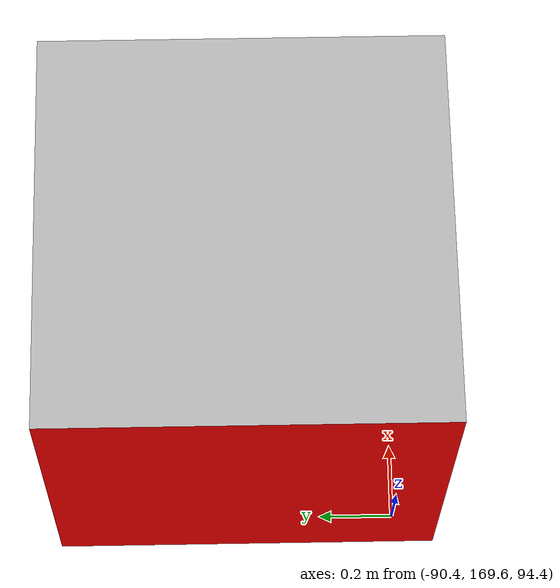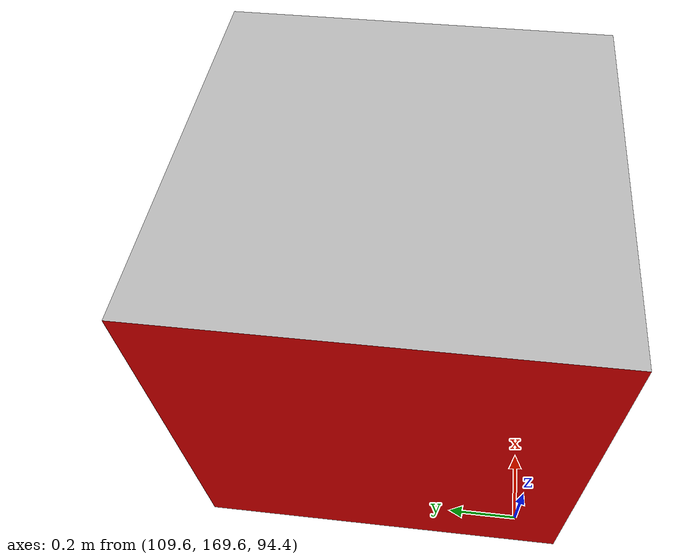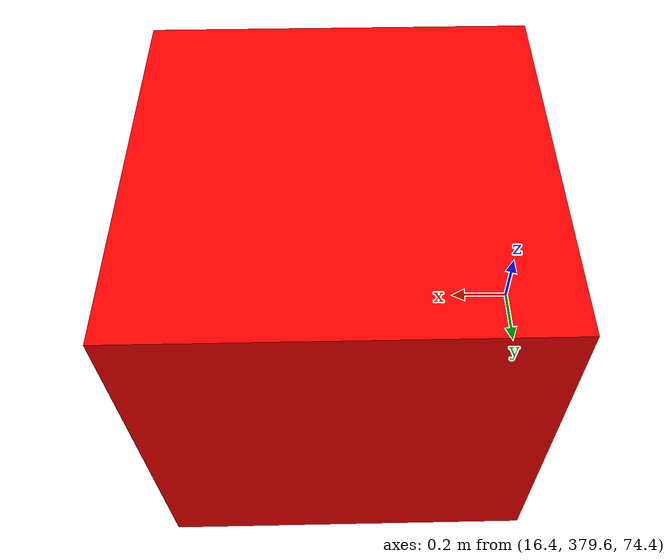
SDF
<sdf version="1.9">
 <world name="cohoma">
  <physics name="1ms" type="ignored">
   <max_step_size>0.001</max_step_size>
   <real_time_factor>1.0</real_time_factor>
   <collision_detector>bullet</collision_detector>
  </physics>
  <plugin filename="gz-sim-physics-system" name="gz::sim::systems::Physics"/>
  <plugin filename="gz-sim-sensors-system" name="gz::sim::systems::Sensors">
   <render_engine>ogre2</render_engine>
  </plugin>
  <plugin filename="gz-sim-user-commands-system" name="gz::sim::systems::UserCommands"/>
  <plugin filename="gz-sim-scene-broadcaster-system" name="gz::sim::systems::SceneBroadcaster"/>
  <plugin filename="gz-sim-imu-system" name="gz::sim::systems::Imu"/>
  <plugin filename="gz-sim-navsat-system" name="gz::sim::systems::NavSat"/>
  <scene>
   <ambient>1.0 1.0 1.0</ambient>
   <background>0.8 0.8 0.8</background>
   <grid>false</grid>
   <shadows>true</shadows>
  </scene>
  <spherical_coordinates>
   <latitude_deg>48.86314789481615</latitude_deg>
   <longitude_deg>1.8904048204422</longitude_deg>
   <elevation>0</elevation>
   <heading_deg>0</heading_deg>
   <surface_model>EARTH_WGS84</surface_model>
  </spherical_coordinates>
  <light type="directional" name="sun">
   <pose>0 0 10 0 0 0</pose>
   <diffuse>0.8 0.8 0.8 1</diffuse>
   <specular>0.0 0.0 0.0 0</specular>
   <attenuation>
    <range>1000</range>
    <constant>0.9</constant>
    <linear>0.01</linear>
    <quadratic>0.001</quadratic>
   </attenuation>
   <direction>-0.5 0.1 -0.9</direction>
  </light>
  <model name="axes">
   <static>1</static>
   <link name="link">
    <visual name="r">
     <cast_shadows>0</cast_shadows>
     <pose>5 0 0.1 0 0 0</pose>
     <geometry><box><size>10 0.01 0.01</size></box></geometry>
     <material>
      <ambient>1 0 0 0.1</ambient>
      <diffuse>1 0 0 0.1</diffuse>
      <emissive>1 0 0 0.1</emissive>
      <specular>0.5 0.5 0.5 0.1</specular>
     </material>
    </visual>
    <visual name="g">
     <cast_shadows>0</cast_shadows>
     <pose>0 5 0.1 0 0 0</pose>
     <geometry><box><size>0.01 10 0.01</size></box></geometry>
     <material>
      <ambient>0 1 0 0.1</ambient>
      <diffuse>0 1 0 0.1</diffuse>
      <emissive>0 1 0 0.1</emissive>
      <specular>0.5 0.5 0.5 0.1</specular>
     </material>
    </visual>
    <visual name="b">
     <cast_shadows>0</cast_shadows>
     <pose>0 0 5.1 0 0 0</pose>
     <geometry><box><size>0.01 0.01 10</size></box></geometry>
     <material>
      <ambient>0 0 1 0.1</ambient>
      <diffuse>0 0 1 0.1</diffuse>
      <emissive>0 0 1 0.1</emissive>
      <specular>0.5 0.5 0.5 0.1</specular>
     </material>
    </visual>
    <sensor name="navsat_sensor" type="navsat"><always_on>1</always_on><update_rate>1</update_rate></sensor>
   </link>
  </model>
  <include><uri>model://cube_cohoma_1</uri><pose>110 170 95 0 0 0</pose></include>
  <include><uri>model://cube_cohoma_2</uri><pose>17 380 75 0 0 0</pose></include>
  <include><uri>model://cube_cohoma_3</uri><pose>-90 170 95 0 0 0</pose></include>
 </world>
</sdf>

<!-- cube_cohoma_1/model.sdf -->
<sdf version="1.9">
  <model name='cohoma_cube_1'>
    <pose>0 0 0 0 0 0</pose>
    <link name='cohoma_cube_link'>
      <velocity_decay>
        <linear>0.0</linear>
        <angular>0.0</angular>
      </velocity_decay>
      <inertial>
        <pose>0 0 0 0 0 0</pose>
        <mass>15</mass>
        <inertia>
          <ixx>0.008</ixx>
          <ixy>0</ixy>
          <ixz>0</ixz>
          <iyy>0.015</iyy>
          <iyz>0</iyz>
          <izz>0.017</izz>
        </inertia>
      </inertial>
      <collision name='base_collision'>
        <pose>0 0 0 0 0 0</pose>
        <geometry>
          <box>
            <size>1 1 1</size>
          </box>
        </geometry>
        <surface>
          <contact>
            <ode>
              <max_vel>100.0</max_vel>
              <min_depth>0.001</min_depth>
            </ode>
          </contact>
          <friction>
            <ode>
              <mu>100000.0</mu>
              <mu2>100000.0</mu2>
            </ode>
          </friction>
        </surface>
      </collision>
      <visual name='cohoma_cube_visual'>
      	<geometry>
          <mesh>
            <scale>1 1 1</scale>
            <uri>meshes/cube_1.dae</uri>
          </mesh>
        </geometry>
      </visual>
     </link>
  </model>
</sdf>

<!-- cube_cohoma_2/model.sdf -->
<sdf version="1.9">
  <model name='cohoma_cube_2'>
    <pose>0 0 0 0 0 0</pose>
    <link name='cohoma_cube_link'>
      <velocity_decay>
        <linear>0.0</linear>
        <angular>0.0</angular>
      </velocity_decay>
      <inertial>
        <pose>0 0 0 0 0 0</pose>
        <mass>15</mass>
        <inertia>
          <ixx>0.008</ixx>
          <ixy>0</ixy>
          <ixz>0</ixz>
          <iyy>0.015</iyy>
          <iyz>0</iyz>
          <izz>0.017</izz>
        </inertia>
      </inertial>
      <collision name='base_collision'>
        <pose>0 0 0 0 0 0</pose>
        <geometry>
          <box>
            <size>1 1 1</size>
          </box>
        </geometry>
        <surface>
          <contact>
            <ode>
              <max_vel>100.0</max_vel>
              <min_depth>0.001</min_depth>
            </ode>
          </contact>
          <friction>
            <ode>
              <mu>100000.0</mu>
              <mu2>100000.0</mu2>
            </ode>
          </friction>
        </surface>
      </collision>
      <visual name='cohoma_cube_visual'>
      	<geometry>
          <mesh>
            <scale>1 1 1</scale>
            <uri>meshes/cube_2.dae</uri>
          </mesh>
        </geometry>
      </visual>
     </link>
  </model>
</sdf>

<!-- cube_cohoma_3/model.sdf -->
<sdf version="1.9">
  <model name='cohoma_cube_3'>
    <pose>0 0 0 0 0 0</pose>
    <link name='cohoma_cube_link'>
      <velocity_decay>
        <linear>0.0</linear>
        <angular>0.0</angular>
      </velocity_decay>
      <inertial>
        <pose>0 0 0 0 0 0</pose>
        <mass>15</mass>
        <inertia>
          <ixx>0.008</ixx>
          <ixy>0</ixy>
          <ixz>0</ixz>
          <iyy>0.015</iyy>
          <iyz>0</iyz>
          <izz>0.017</izz>
        </inertia>
      </inertial>
      <collision name='base_collision'>
        <pose>0 0 0 0 0 0</pose>
        <geometry>
          <box>
            <size>1 1 1</size>
          </box>
        </geometry>
        <surface>
          <contact>
            <ode>
              <max_vel>100.0</max_vel>
              <min_depth>0.001</min_depth>
            </ode>
          </contact>
          <friction>
            <ode>
              <mu>100000.0</mu>
              <mu2>100000.0</mu2>
            </ode>
          </friction>
        </surface>
      </collision>
      <visual name='cohoma_cube_visual'>
      	<geometry>
          <mesh>
            <scale>1 1 1</scale>
            <uri>meshes/cube_3.dae</uri>
          </mesh>
        </geometry>
      </visual>
     </link>
  </model>
</sdf>
